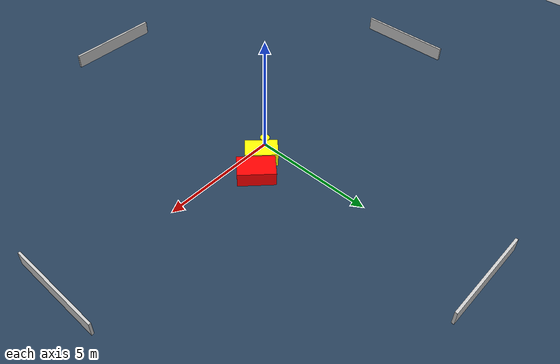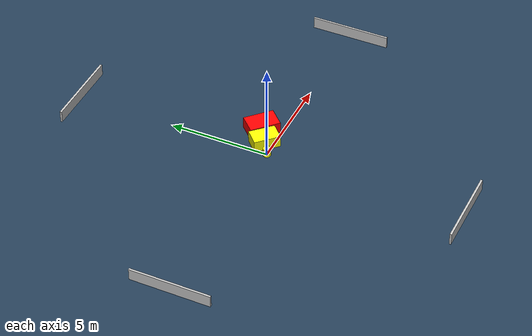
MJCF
<?xml version="1.0" ?>
<mujoco model="generated_environment">
  <option timestep="0.01" integrator="RK4" cone="elliptic"/>
  <default>
    <geom density="1"/>
  </default>
  <asset>
    <texture builtin="gradient" height="3072" name="skybox" rgb1="0.3 0.5 0.7" rgb2="0 0 0" type="skybox" width="512"/>
    <texture builtin="checker" height="300" name="groundplane" rgb1="0.2 0.3 0.4" rgb2="0.1 0.2 0.3" type="2d" width="300"/>
    <material name="groundplane" reflectance="0.2" texrepeat="5 5" texture="groundplane"/>
  </asset>
  <worldbody>
    <light dir="0 0 -1" directional="true" pos="0 0 1.5"/>
    <geom condim="3" friction="0.5 0.005 0.001" material="groundplane" name="floor" pos="0 0 0" size="0 0 0.05" type="plane"/>
    <body name="walls">
      <geom name="wall_1" condim="4" pos="-10.0 0.0 0.3" rgba="0.800000011920929 0.800000011920929 0.800000011920929 1.0" size="0.05 2.0 0.3" type="box"/>
      <geom name="wall_2" condim="4" pos="10.0 0.0 0.3" rgba="0.800000011920929 0.800000011920929 0.800000011920929 1.0" size="0.05 2.0 0.3" type="box"/>
      <geom name="wall_3" condim="4" pos="0.0 -10.0 0.3" rgba="0.800000011920929 0.800000011920929 0.800000011920929 1.0" size="2.0 0.05 0.3" type="box"/>
      <geom name="wall_4" condim="4" pos="0.0 10.0 0.3" rgba="0.800000011920929 0.800000011920929 0.800000011920929 1.0" size="2.0 0.05 0.3" type="box"/>
    </body>
    <body name="robot">
      <joint name="joint_x" type="slide" pos="0 0 0" axis="1 0 0"/>
      <joint name="joint_y" type="slide" pos="0 0 0" axis="0 1 0"/>
      <geom name="robot" type="cylinder" pos="0.0 0.0 0.2" size="0.2 0.2 0.0" mass="5.0" friction="1.0 0.005 0.0001" condim="4" rgba="1.0 1.0 0.0 1.0"/>
    </body>
    <body name="obstacle_1_movable">
      <geom name="obstacle_1_movable" condim="4" pos="0.6824842523420704 0.44697609654665926 0.3" euler="0 0 134.42559865348005" friction="0.0 0.005 0.001" rgba="1.0 1.0 0.0 1.0" size="0.6612578449586669 0.4327271495288633 0.3" type="box" mass="0.1"/>
      <joint type="free"/>
    </body>
    <body name="obstacle_2_static">
      <geom name="obstacle_2_static" condim="4" pos="1.5393810884018455 0.9882174813099417 0.3" euler="0 0 226.04085486009126" friction="0.0 0.005 0.001" rgba="1.0 0.0 0.0 1.0" size="0.5036082230417311 0.7609420904199715 0.3" type="box"/>
    </body>
  </worldbody>
  <actuator>
    <motor name="actuator_x" joint="joint_x" gear="1" ctrlrange="-1 1"/>
    <motor name="actuator_y" joint="joint_y" gear="1" ctrlrange="-1 1"/>
  </actuator>
</mujoco>
